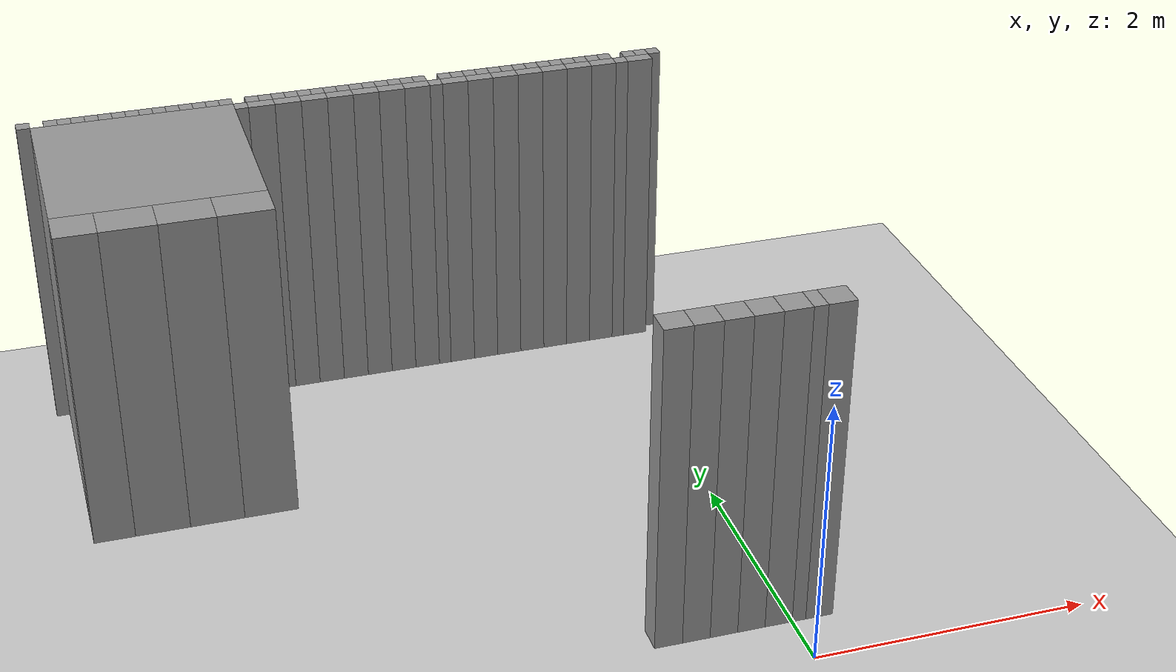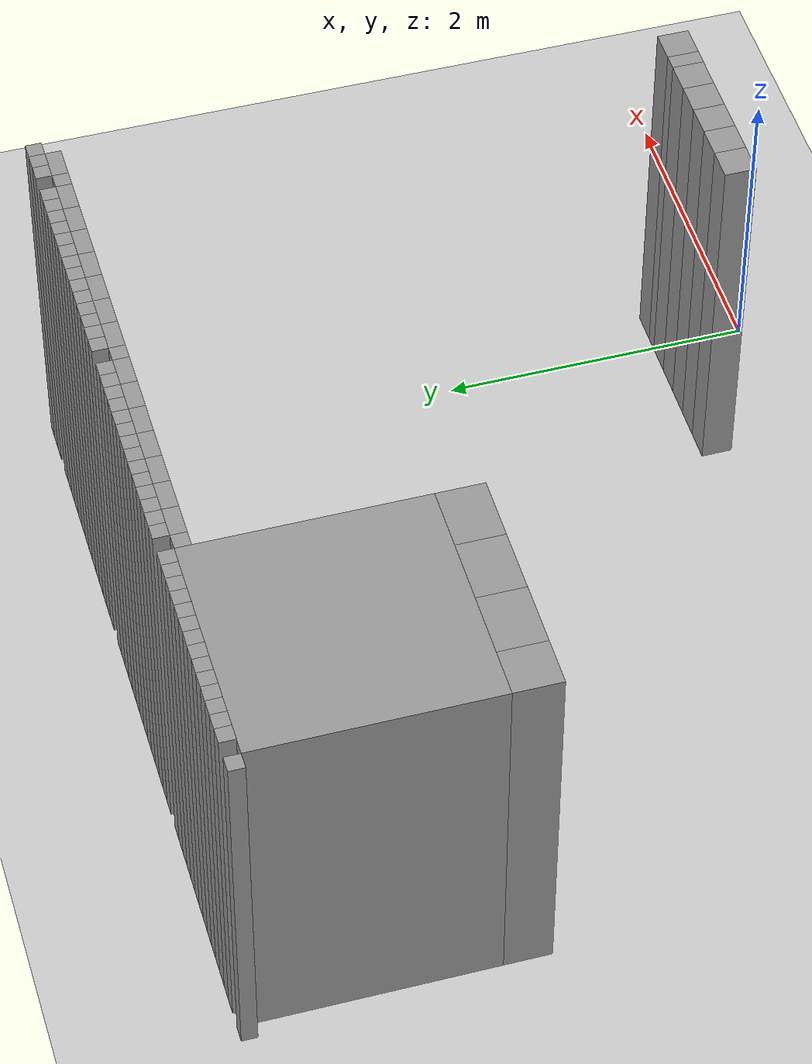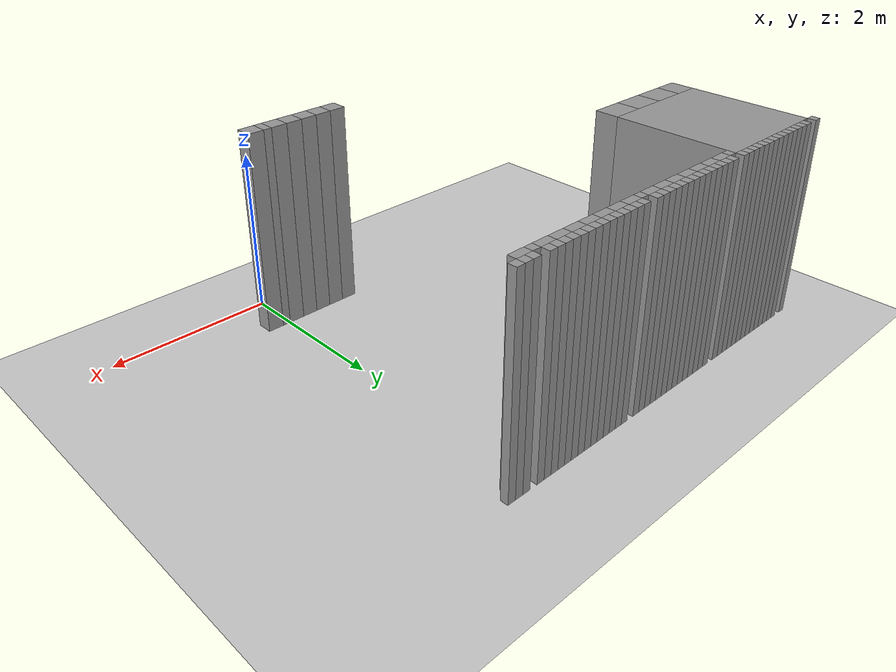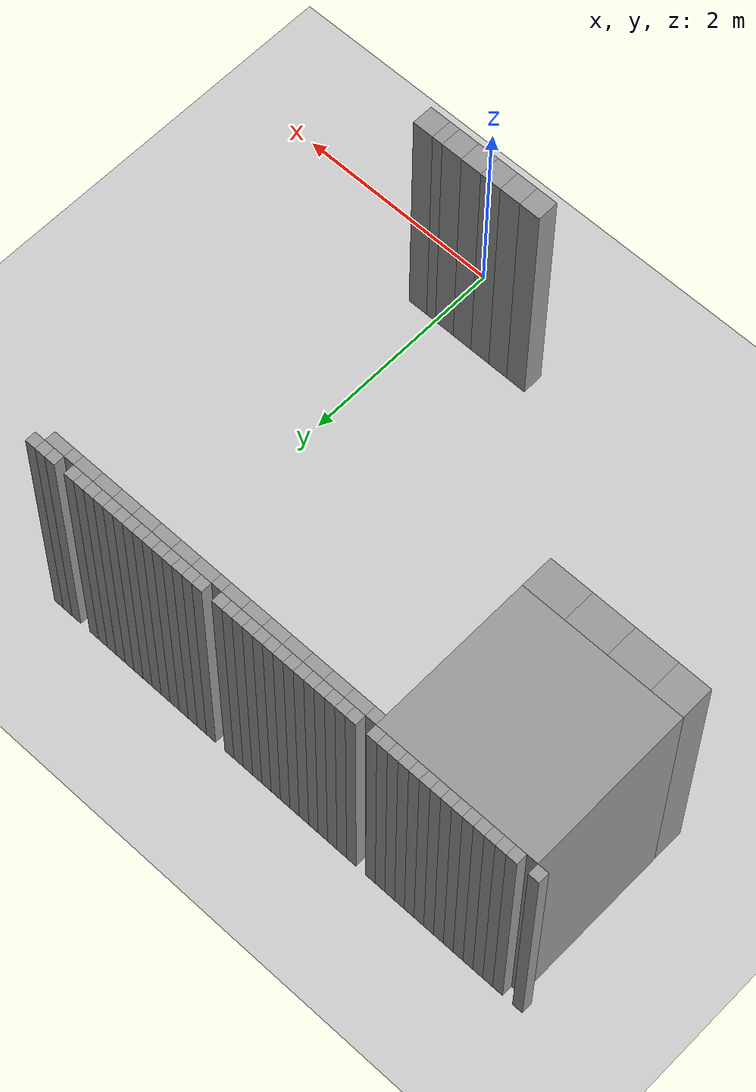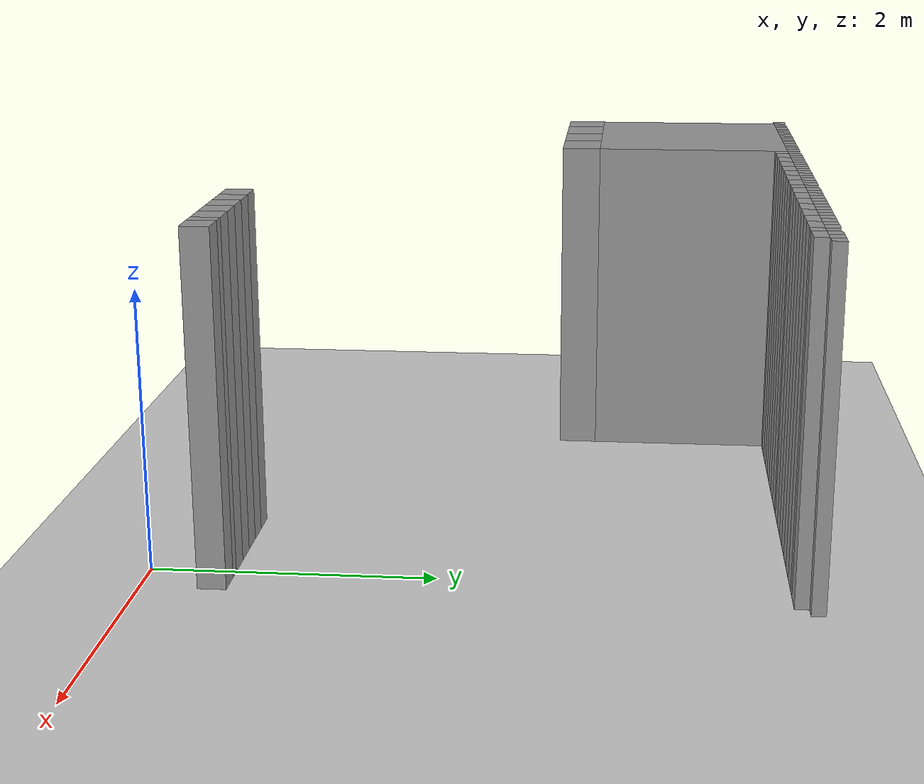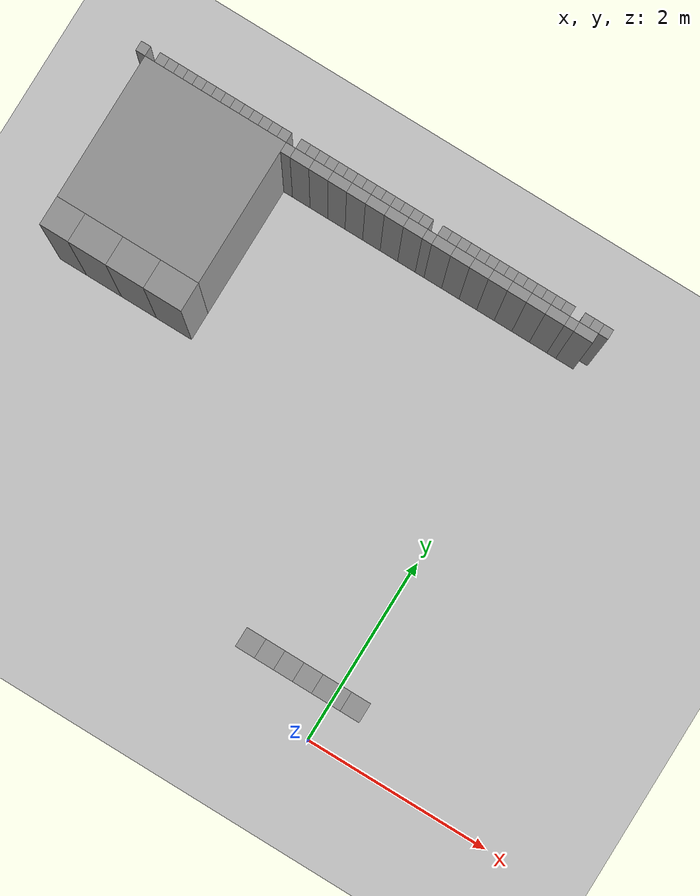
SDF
<sdf version="1.6">
 <world name="default">
  <include><uri>model://sun</uri></include>
  <include><uri>model://ground_plane</uri></include>
  <model name="stage_test">
   <static>1</static>
   <pose>-12 -12 0 0 0 0</pose>
   <link name="Wall_165">
    <pose>7.449999999999999 16.55 0 0 0 0</pose>
    <collision name="Wall_165_collision">
     <pose>0 0 1.25 0 0 0</pose>
     <geometry><box><size>0.09999999999999964 0.10000000000000142 2.5</size></box></geometry>
    </collision>
    <visual name="Wall_165_visual">
     <pose>0 0 1.25 0 0 0</pose>
     <geometry><box><size>0.09999999999999964 0.10000000000000142 2.5</size></box></geometry>
     <material>
      <script><uri>file://media/materials/scripts/gazebo.material</uri><name>Gazebo/Grey</name></script>
      <ambient>1 1 1 1</ambient>
     </material>
    </visual>
   </link>
   <link name="Wall_195">
    <pose>7.65 16.55 0 0 0 0</pose>
    <collision name="Wall_195_collision">
     <pose>0 0 1.25 0 0 0</pose>
     <geometry><box><size>0.09999999999999964 0.10000000000000142 2.5</size></box></geometry>
    </collision>
    <visual name="Wall_195_visual">
     <pose>0 0 1.25 0 0 0</pose>
     <geometry><box><size>0.09999999999999964 0.10000000000000142 2.5</size></box></geometry>
     <material>
      <script><uri>file://media/materials/scripts/gazebo.material</uri><name>Gazebo/Grey</name></script>
      <ambient>1 1 1 1</ambient>
     </material>
    </visual>
   </link>
   <link name="Wall_196">
    <pose>7.75 16.55 0 0 0 0</pose>
    <collision name="Wall_196_collision">
     <pose>0 0 1.25 0 0 0</pose>
     <geometry><box><size>0.10000000000000053 0.10000000000000142 2.5</size></box></geometry>
    </collision>
    <visual name="Wall_196_visual">
     <pose>0 0 1.25 0 0 0</pose>
     <geometry><box><size>0.10000000000000053 0.10000000000000142 2.5</size></box></geometry>
     <material>
      <script><uri>file://media/materials/scripts/gazebo.material</uri><name>Gazebo/Grey</name></script>
      <ambient>1 1 1 1</ambient>
     </material>
    </visual>
   </link>
   <link name="Wall_197">
    <pose>7.8500000000000005 16.55 0 0 0 0</pose>
    <collision name="Wall_197_collision">
     <pose>0 0 1.25 0 0 0</pose>
     <geometry><box><size>0.09999999999999964 0.10000000000000142 2.5</size></box></geometry>
    </collision>
    <visual name="Wall_197_visual">
     <pose>0 0 1.25 0 0 0</pose>
     <geometry><box><size>0.09999999999999964 0.10000000000000142 2.5</size></box></geometry>
     <material>
      <script><uri>file://media/materials/scripts/gazebo.material</uri><name>Gazebo/Grey</name></script>
      <ambient>1 1 1 1</ambient>
     </material>
    </visual>
   </link>
   <link name="Wall_198">
    <pose>7.949999999999999 16.55 0 0 0 0</pose>
    <collision name="Wall_198_collision">
     <pose>0 0 1.25 0 0 0</pose>
     <geometry><box><size>0.09999999999999964 0.10000000000000142 2.5</size></box></geometry>
    </collision>
    <visual name="Wall_198_visual">
     <pose>0 0 1.25 0 0 0</pose>
     <geometry><box><size>0.09999999999999964 0.10000000000000142 2.5</size></box></geometry>
     <material>
      <script><uri>file://media/materials/scripts/gazebo.material</uri><name>Gazebo/Grey</name></script>
      <ambient>1 1 1 1</ambient>
     </material>
    </visual>
   </link>
   <link name="Wall_199">
    <pose>8.05 16.55 0 0 0 0</pose>
    <collision name="Wall_199_collision">
     <pose>0 0 1.25 0 0 0</pose>
     <geometry><box><size>0.09999999999999964 0.10000000000000142 2.5</size></box></geometry>
    </collision>
    <visual name="Wall_199_visual">
     <pose>0 0 1.25 0 0 0</pose>
     <geometry><box><size>0.09999999999999964 0.10000000000000142 2.5</size></box></geometry>
     <material>
      <script><uri>file://media/materials/scripts/gazebo.material</uri><name>Gazebo/Grey</name></script>
      <ambient>1 1 1 1</ambient>
     </material>
    </visual>
   </link>
   <link name="Wall_200">
    <pose>8.15 16.55 0 0 0 0</pose>
    <collision name="Wall_200_collision">
     <pose>0 0 1.25 0 0 0</pose>
     <geometry><box><size>0.10000000000000142 0.10000000000000142 2.5</size></box></geometry>
    </collision>
    <visual name="Wall_200_visual">
     <pose>0 0 1.25 0 0 0</pose>
     <geometry><box><size>0.10000000000000142 0.10000000000000142 2.5</size></box></geometry>
     <material>
      <script><uri>file://media/materials/scripts/gazebo.material</uri><name>Gazebo/Grey</name></script>
      <ambient>1 1 1 1</ambient>
     </material>
    </visual>
   </link>
   <link name="Wall_201">
    <pose>8.25 16.55 0 0 0 0</pose>
    <collision name="Wall_201_collision">
     <pose>0 0 1.25 0 0 0</pose>
     <geometry><box><size>0.09999999999999964 0.10000000000000142 2.5</size></box></geometry>
    </collision>
    <visual name="Wall_201_visual">
     <pose>0 0 1.25 0 0 0</pose>
     <geometry><box><size>0.09999999999999964 0.10000000000000142 2.5</size></box></geometry>
     <material>
      <script><uri>file://media/materials/scripts/gazebo.material</uri><name>Gazebo/Grey</name></script>
      <ambient>1 1 1 1</ambient>
     </material>
    </visual>
   </link>
   <link name="Wall_202">
    <pose>8.350000000000001 16.55 0 0 0 0</pose>
    <collision name="Wall_202_collision">
     <pose>0 0 1.25 0 0 0</pose>
     <geometry><box><size>0.09999999999999964 0.10000000000000142 2.5</size></box></geometry>
    </collision>
    <visual name="Wall_202_visual">
     <pose>0 0 1.25 0 0 0</pose>
     <geometry><box><size>0.09999999999999964 0.10000000000000142 2.5</size></box></geometry>
     <material>
      <script><uri>file://media/materials/scripts/gazebo.material</uri><name>Gazebo/Grey</name></script>
      <ambient>1 1 1 1</ambient>
     </material>
    </visual>
   </link>
   <link name="Wall_203">
    <pose>8.45 16.55 0 0 0 0</pose>
    <collision name="Wall_203_collision">
     <pose>0 0 1.25 0 0 0</pose>
     <geometry><box><size>0.09999999999999964 0.10000000000000142 2.5</size></box></geometry>
    </collision>
    <visual name="Wall_203_visual">
     <pose>0 0 1.25 0 0 0</pose>
     <geometry><box><size>0.09999999999999964 0.10000000000000142 2.5</size></box></geometry>
     <material>
      <script><uri>file://media/materials/scripts/gazebo.material</uri><name>Gazebo/Grey</name></script>
      <ambient>1 1 1 1</ambient>
     </material>
    </visual>
   </link>
   <link name="Wall_204">
    <pose>8.55 16.55 0 0 0 0</pose>
    <collision name="Wall_204_collision">
     <pose>0 0 1.25 0 0 0</pose>
     <geometry><box><size>0.09999999999999964 0.10000000000000142 2.5</size></box></geometry>
    </collision>
    <visual name="Wall_204_visual">
     <pose>0 0 1.25 0 0 0</pose>
     <geometry><box><size>0.09999999999999964 0.10000000000000142 2.5</size></box></geometry>
     <material>
      <script><uri>file://media/materials/scripts/gazebo.material</uri><name>Gazebo/Grey</name></script>
      <ambient>1 1 1 1</ambient>
     </material>
    </visual>
   </link>
   <link name="Wall_205">
    <pose>8.65 16.55 0 0 0 0</pose>
    <collision name="Wall_205_collision">
     <pose>0 0 1.25 0 0 0</pose>
     <geometry><box><size>0.10000000000000142 0.10000000000000142 2.5</size></box></geometry>
    </collision>
    <visual name="Wall_205_visual">
     <pose>0 0 1.25 0 0 0</pose>
     <geometry><box><size>0.10000000000000142 0.10000000000000142 2.5</size></box></geometry>
     <material>
      <script><uri>file://media/materials/scripts/gazebo.material</uri><name>Gazebo/Grey</name></script>
      <ambient>1 1 1 1</ambient>
     </material>
    </visual>
   </link>
   <link name="Wall_206">
    <pose>8.75 16.55 0 0 0 0</pose>
    <collision name="Wall_206_collision">
     <pose>0 0 1.25 0 0 0</pose>
     <geometry><box><size>0.09999999999999964 0.10000000000000142 2.5</size></box></geometry>
    </collision>
    <visual name="Wall_206_visual">
     <pose>0 0 1.25 0 0 0</pose>
     <geometry><box><size>0.09999999999999964 0.10000000000000142 2.5</size></box></geometry>
     <material>
      <script><uri>file://media/materials/scripts/gazebo.material</uri><name>Gazebo/Grey</name></script>
      <ambient>1 1 1 1</ambient>
     </material>
    </visual>
   </link>
   <link name="Wall_207">
    <pose>8.850000000000001 16.55 0 0 0 0</pose>
    <collision name="Wall_207_collision">
     <pose>0 0 1.25 0 0 0</pose>
     <geometry><box><size>0.09999999999999964 0.10000000000000142 2.5</size></box></geometry>
    </collision>
    <visual name="Wall_207_visual">
     <pose>0 0 1.25 0 0 0</pose>
     <geometry><box><size>0.09999999999999964 0.10000000000000142 2.5</size></box></geometry>
     <material>
      <script><uri>file://media/materials/scripts/gazebo.material</uri><name>Gazebo/Grey</name></script>
      <ambient>1 1 1 1</ambient>
     </material>
    </visual>
   </link>
   <link name="Wall_208">
    <pose>8.95 16.55 0 0 0 0</pose>
    <collision name="Wall_208_collision">
     <pose>0 0 1.25 0 0 0</pose>
     <geometry><box><size>0.09999999999999964 0.10000000000000142 2.5</size></box></geometry>
    </collision>
    <visual name="Wall_208_visual">
     <pose>0 0 1.25 0 0 0</pose>
     <geometry><box><size>0.09999999999999964 0.10000000000000142 2.5</size></box></geometry>
     <material>
      <script><uri>file://media/materials/scripts/gazebo.material</uri><name>Gazebo/Grey</name></script>
      <ambient>1 1 1 1</ambient>
     </material>
    </visual>
   </link>
   <link name="Wall_209">
    <pose>8.25 15.75 0 0 0 0</pose>
    <collision name="Wall_209_collision">
     <pose>0 0 1.25 0 0 0</pose>
     <geometry><box><size>1.5 1.5 2.5</size></box></geometry>
    </collision>
    <visual name="Wall_209_visual">
     <pose>0 0 1.25 0 0 0</pose>
     <geometry><box><size>1.5 1.5 2.5</size></box></geometry>
     <material>
      <script><uri>file://media/materials/scripts/gazebo.material</uri><name>Gazebo/Grey</name></script>
      <ambient>1 1 1 1</ambient>
     </material>
    </visual>
   </link>
   <link name="Wall_214">
    <pose>7.65 14.850000000000001 0 0 0 0</pose>
    <collision name="Wall_214_collision">
     <pose>0 0 1.25 0 0 0</pose>
     <geometry><box><size>0.3000000000000007 0.29999999999999893 2.5</size></box></geometry>
    </collision>
    <visual name="Wall_214_visual">
     <pose>0 0 1.25 0 0 0</pose>
     <geometry><box><size>0.3000000000000007 0.29999999999999893 2.5</size></box></geometry>
     <material>
      <script><uri>file://media/materials/scripts/gazebo.material</uri><name>Gazebo/Grey</name></script>
      <ambient>1 1 1 1</ambient>
     </material>
    </visual>
   </link>
   <link name="Wall_215">
    <pose>8.0 14.850000000000001 0 0 0 0</pose>
    <collision name="Wall_215_collision">
     <pose>0 0 1.25 0 0 0</pose>
     <geometry><box><size>0.40000000000000036 0.29999999999999893 2.5</size></box></geometry>
    </collision>
    <visual name="Wall_215_visual">
     <pose>0 0 1.25 0 0 0</pose>
     <geometry><box><size>0.40000000000000036 0.29999999999999893 2.5</size></box></geometry>
     <material>
      <script><uri>file://media/materials/scripts/gazebo.material</uri><name>Gazebo/Grey</name></script>
      <ambient>1 1 1 1</ambient>
     </material>
    </visual>
   </link>
   <link name="Wall_216">
    <pose>8.4 14.850000000000001 0 0 0 0</pose>
    <collision name="Wall_216_collision">
     <pose>0 0 1.25 0 0 0</pose>
     <geometry><box><size>0.3999999999999986 0.29999999999999893 2.5</size></box></geometry>
    </collision>
    <visual name="Wall_216_visual">
     <pose>0 0 1.25 0 0 0</pose>
     <geometry><box><size>0.3999999999999986 0.29999999999999893 2.5</size></box></geometry>
     <material>
      <script><uri>file://media/materials/scripts/gazebo.material</uri><name>Gazebo/Grey</name></script>
      <ambient>1 1 1 1</ambient>
     </material>
    </visual>
   </link>
   <link name="Wall_217">
    <pose>8.8 14.850000000000001 0 0 0 0</pose>
    <collision name="Wall_217_collision">
     <pose>0 0 1.25 0 0 0</pose>
     <geometry><box><size>0.40000000000000036 0.29999999999999893 2.5</size></box></geometry>
    </collision>
    <visual name="Wall_217_visual">
     <pose>0 0 1.25 0 0 0</pose>
     <geometry><box><size>0.40000000000000036 0.29999999999999893 2.5</size></box></geometry>
     <material>
      <script><uri>file://media/materials/scripts/gazebo.material</uri><name>Gazebo/Grey</name></script>
      <ambient>1 1 1 1</ambient>
     </material>
    </visual>
   </link>
   <link name="Wall_218">
    <pose>9.15 16.55 0 0 0 0</pose>
    <collision name="Wall_218_collision">
     <pose>0 0 1.25 0 0 0</pose>
     <geometry><box><size>0.10000000000000142 0.10000000000000142 2.5</size></box></geometry>
    </collision>
    <visual name="Wall_218_visual">
     <pose>0 0 1.25 0 0 0</pose>
     <geometry><box><size>0.10000000000000142 0.10000000000000142 2.5</size></box></geometry>
     <material>
      <script><uri>file://media/materials/scripts/gazebo.material</uri><name>Gazebo/Grey</name></script>
      <ambient>1 1 1 1</ambient>
     </material>
    </visual>
   </link>
   <link name="Wall_219">
    <pose>9.25 16.55 0 0 0 0</pose>
    <collision name="Wall_219_collision">
     <pose>0 0 1.25 0 0 0</pose>
     <geometry><box><size>0.09999999999999964 0.10000000000000142 2.5</size></box></geometry>
    </collision>
    <visual name="Wall_219_visual">
     <pose>0 0 1.25 0 0 0</pose>
     <geometry><box><size>0.09999999999999964 0.10000000000000142 2.5</size></box></geometry>
     <material>
      <script><uri>file://media/materials/scripts/gazebo.material</uri><name>Gazebo/Grey</name></script>
      <ambient>1 1 1 1</ambient>
     </material>
    </visual>
   </link>
   <link name="Wall_220">
    <pose>9.350000000000001 16.55 0 0 0 0</pose>
    <collision name="Wall_220_collision">
     <pose>0 0 1.25 0 0 0</pose>
     <geometry><box><size>0.09999999999999964 0.10000000000000142 2.5</size></box></geometry>
    </collision>
    <visual name="Wall_220_visual">
     <pose>0 0 1.25 0 0 0</pose>
     <geometry><box><size>0.09999999999999964 0.10000000000000142 2.5</size></box></geometry>
     <material>
      <script><uri>file://media/materials/scripts/gazebo.material</uri><name>Gazebo/Grey</name></script>
      <ambient>1 1 1 1</ambient>
     </material>
    </visual>
   </link>
   <link name="Wall_221">
    <pose>9.45 16.55 0 0 0 0</pose>
    <collision name="Wall_221_collision">
     <pose>0 0 1.25 0 0 0</pose>
     <geometry><box><size>0.09999999999999964 0.10000000000000142 2.5</size></box></geometry>
    </collision>
    <visual name="Wall_221_visual">
     <pose>0 0 1.25 0 0 0</pose>
     <geometry><box><size>0.09999999999999964 0.10000000000000142 2.5</size></box></geometry>
     <material>
      <script><uri>file://media/materials/scripts/gazebo.material</uri><name>Gazebo/Grey</name></script>
      <ambient>1 1 1 1</ambient>
     </material>
    </visual>
   </link>
   <link name="Wall_222">
    <pose>9.55 16.55 0 0 0 0</pose>
    <collision name="Wall_222_collision">
     <pose>0 0 1.25 0 0 0</pose>
     <geometry><box><size>0.10000000000000142 0.10000000000000142 2.5</size></box></geometry>
    </collision>
    <visual name="Wall_222_visual">
     <pose>0 0 1.25 0 0 0</pose>
     <geometry><box><size>0.10000000000000142 0.10000000000000142 2.5</size></box></geometry>
     <material>
      <script><uri>file://media/materials/scripts/gazebo.material</uri><name>Gazebo/Grey</name></script>
      <ambient>1 1 1 1</ambient>
     </material>
    </visual>
   </link>
   <link name="Wall_223">
    <pose>9.650000000000002 16.55 0 0 0 0</pose>
    <collision name="Wall_223_collision">
     <pose>0 0 1.25 0 0 0</pose>
     <geometry><box><size>0.09999999999999964 0.10000000000000142 2.5</size></box></geometry>
    </collision>
    <visual name="Wall_223_visual">
     <pose>0 0 1.25 0 0 0</pose>
     <geometry><box><size>0.09999999999999964 0.10000000000000142 2.5</size></box></geometry>
     <material>
      <script><uri>file://media/materials/scripts/gazebo.material</uri><name>Gazebo/Grey</name></script>
      <ambient>1 1 1 1</ambient>
     </material>
    </visual>
   </link>
   <link name="Wall_224">
    <pose>9.75 16.55 0 0 0 0</pose>
    <collision name="Wall_224_collision">
     <pose>0 0 1.25 0 0 0</pose>
     <geometry><box><size>0.09999999999999964 0.10000000000000142 2.5</size></box></geometry>
    </collision>
    <visual name="Wall_224_visual">
     <pose>0 0 1.25 0 0 0</pose>
     <geometry><box><size>0.09999999999999964 0.10000000000000142 2.5</size></box></geometry>
     <material>
      <script><uri>file://media/materials/scripts/gazebo.material</uri><name>Gazebo/Grey</name></script>
      <ambient>1 1 1 1</ambient>
     </material>
    </visual>
   </link>
   <link name="Wall_225">
    <pose>9.850000000000001 16.55 0 0 0 0</pose>
    <collision name="Wall_225_collision">
     <pose>0 0 1.25 0 0 0</pose>
     <geometry><box><size>0.09999999999999964 0.10000000000000142 2.5</size></box></geometry>
    </collision>
    <visual name="Wall_225_visual">
     <pose>0 0 1.25 0 0 0</pose>
     <geometry><box><size>0.09999999999999964 0.10000000000000142 2.5</size></box></geometry>
     <material>
      <script><uri>file://media/materials/scripts/gazebo.material</uri><name>Gazebo/Grey</name></script>
      <ambient>1 1 1 1</ambient>
     </material>
    </visual>
   </link>
   <link name="Wall_226">
    <pose>9.95 16.55 0 0 0 0</pose>
    <collision name="Wall_226_collision">
     <pose>0 0 1.25 0 0 0</pose>
     <geometry><box><size>0.09999999999999964 0.10000000000000142 2.5</size></box></geometry>
    </collision>
    <visual name="Wall_226_visual">
     <pose>0 0 1.25 0 0 0</pose>
     <geometry><box><size>0.09999999999999964 0.10000000000000142 2.5</size></box></geometry>
     <material>
      <script><uri>file://media/materials/scripts/gazebo.material</uri><name>Gazebo/Grey</name></script>
      <ambient>1 1 1 1</ambient>
     </material>
    </visual>
   </link>
   <link name="Wall_227">
    <pose>10.05 16.55 0 0 0 0</pose>
    <collision name="Wall_227_collision">
     <pose>0 0 1.25 0 0 0</pose>
     <geometry><box><size>0.10000000000000142 0.10000000000000142 2.5</size></box></geometry>
    </collision>
    <visual name="Wall_227_visual">
     <pose>0 0 1.25 0 0 0</pose>
     <geometry><box><size>0.10000000000000142 0.10000000000000142 2.5</size></box></geometry>
     <material>
      <script><uri>file://media/materials/scripts/gazebo.material</uri><name>Gazebo/Grey</name></script>
      <ambient>1 1 1 1</ambient>
     </material>
    </visual>
   </link>
   <link name="Wall_228">
    <pose>10.150000000000002 16.55 0 0 0 0</pose>
    <collision name="Wall_228_collision">
     <pose>0 0 1.25 0 0 0</pose>
     <geometry><box><size>0.09999999999999964 0.10000000000000142 2.5</size></box></geometry>
    </collision>
    <visual name="Wall_228_visual">
     <pose>0 0 1.25 0 0 0</pose>
     <geometry><box><size>0.09999999999999964 0.10000000000000142 2.5</size></box></geometry>
     <material>
      <script><uri>file://media/materials/scripts/gazebo.material</uri><name>Gazebo/Grey</name></script>
      <ambient>1 1 1 1</ambient>
     </material>
    </visual>
   </link>
   <link name="Wall_229">
    <pose>10.25 16.55 0 0 0 0</pose>
    <collision name="Wall_229_collision">
     <pose>0 0 1.25 0 0 0</pose>
     <geometry><box><size>0.09999999999999964 0.10000000000000142 2.5</size></box></geometry>
    </collision>
    <visual name="Wall_229_visual">
     <pose>0 0 1.25 0 0 0</pose>
     <geometry><box><size>0.09999999999999964 0.10000000000000142 2.5</size></box></geometry>
     <material>
      <script><uri>file://media/materials/scripts/gazebo.material</uri><name>Gazebo/Grey</name></script>
      <ambient>1 1 1 1</ambient>
     </material>
    </visual>
   </link>
   <link name="Wall_230">
    <pose>10.350000000000001 16.55 0 0 0 0</pose>
    <collision name="Wall_230_collision">
     <pose>0 0 1.25 0 0 0</pose>
     <geometry><box><size>0.09999999999999964 0.10000000000000142 2.5</size></box></geometry>
    </collision>
    <visual name="Wall_230_visual">
     <pose>0 0 1.25 0 0 0</pose>
     <geometry><box><size>0.09999999999999964 0.10000000000000142 2.5</size></box></geometry>
     <material>
      <script><uri>file://media/materials/scripts/gazebo.material</uri><name>Gazebo/Grey</name></script>
      <ambient>1 1 1 1</ambient>
     </material>
    </visual>
   </link>
   <link name="Wall_231">
    <pose>10.45 16.55 0 0 0 0</pose>
    <collision name="Wall_231_collision">
     <pose>0 0 1.25 0 0 0</pose>
     <geometry><box><size>0.09999999999999964 0.10000000000000142 2.5</size></box></geometry>
    </collision>
    <visual name="Wall_231_visual">
     <pose>0 0 1.25 0 0 0</pose>
     <geometry><box><size>0.09999999999999964 0.10000000000000142 2.5</size></box></geometry>
     <material>
      <script><uri>file://media/materials/scripts/gazebo.material</uri><name>Gazebo/Grey</name></script>
      <ambient>1 1 1 1</ambient>
     </material>
    </visual>
   </link>
   <link name="Wall_232">
    <pose>9.05 16.450000000000003 0 0 0 0</pose>
    <collision name="Wall_232_collision">
     <pose>0 0 1.25 0 0 0</pose>
     <geometry><box><size>0.09999999999999964 0.09999999999999787 2.5</size></box></geometry>
    </collision>
    <visual name="Wall_232_visual">
     <pose>0 0 1.25 0 0 0</pose>
     <geometry><box><size>0.09999999999999964 0.09999999999999787 2.5</size></box></geometry>
     <material>
      <script><uri>file://media/materials/scripts/gazebo.material</uri><name>Gazebo/Grey</name></script>
      <ambient>1 1 1 1</ambient>
     </material>
    </visual>
   </link>
   <link name="Wall_233">
    <pose>9.2 16.450000000000003 0 0 0 0</pose>
    <collision name="Wall_233_collision">
     <pose>0 0 1.25 0 0 0</pose>
     <geometry><box><size>0.20000000000000107 0.09999999999999787 2.5</size></box></geometry>
    </collision>
    <visual name="Wall_233_visual">
     <pose>0 0 1.25 0 0 0</pose>
     <geometry><box><size>0.20000000000000107 0.09999999999999787 2.5</size></box></geometry>
     <material>
      <script><uri>file://media/materials/scripts/gazebo.material</uri><name>Gazebo/Grey</name></script>
      <ambient>1 1 1 1</ambient>
     </material>
    </visual>
   </link>
   <link name="Wall_234">
    <pose>9.4 16.450000000000003 0 0 0 0</pose>
    <collision name="Wall_234_collision">
     <pose>0 0 1.25 0 0 0</pose>
     <geometry><box><size>0.1999999999999993 0.09999999999999787 2.5</size></box></geometry>
    </collision>
    <visual name="Wall_234_visual">
     <pose>0 0 1.25 0 0 0</pose>
     <geometry><box><size>0.1999999999999993 0.09999999999999787 2.5</size></box></geometry>
     <material>
      <script><uri>file://media/materials/scripts/gazebo.material</uri><name>Gazebo/Grey</name></script>
      <ambient>1 1 1 1</ambient>
     </material>
    </visual>
   </link>
   <link name="Wall_235">
    <pose>9.600000000000001 16.450000000000003 0 0 0 0</pose>
    <collision name="Wall_235_collision">
     <pose>0 0 1.25 0 0 0</pose>
     <geometry><box><size>0.20000000000000107 0.09999999999999787 2.5</size></box></geometry>
    </collision>
    <visual name="Wall_235_visual">
     <pose>0 0 1.25 0 0 0</pose>
     <geometry><box><size>0.20000000000000107 0.09999999999999787 2.5</size></box></geometry>
     <material>
      <script><uri>file://media/materials/scripts/gazebo.material</uri><name>Gazebo/Grey</name></script>
      <ambient>1 1 1 1</ambient>
     </material>
    </visual>
   </link>
   <link name="Wall_236">
    <pose>9.8 16.450000000000003 0 0 0 0</pose>
    <collision name="Wall_236_collision">
     <pose>0 0 1.25 0 0 0</pose>
     <geometry><box><size>0.1999999999999993 0.09999999999999787 2.5</size></box></geometry>
    </collision>
    <visual name="Wall_236_visual">
     <pose>0 0 1.25 0 0 0</pose>
     <geometry><box><size>0.1999999999999993 0.09999999999999787 2.5</size></box></geometry>
     <material>
      <script><uri>file://media/materials/scripts/gazebo.material</uri><name>Gazebo/Grey</name></script>
      <ambient>1 1 1 1</ambient>
     </material>
    </visual>
   </link>
   <link name="Wall_237">
    <pose>10.0 16.450000000000003 0 0 0 0</pose>
    <collision name="Wall_237_collision">
     <pose>0 0 1.25 0 0 0</pose>
     <geometry><box><size>0.20000000000000107 0.09999999999999787 2.5</size></box></geometry>
    </collision>
    <visual name="Wall_237_visual">
     <pose>0 0 1.25 0 0 0</pose>
     <geometry><box><size>0.20000000000000107 0.09999999999999787 2.5</size></box></geometry>
     <material>
      <script><uri>file://media/materials/scripts/gazebo.material</uri><name>Gazebo/Grey</name></script>
      <ambient>1 1 1 1</ambient>
     </material>
    </visual>
   </link>
   <link name="Wall_238">
    <pose>10.200000000000001 16.450000000000003 0 0 0 0</pose>
    <collision name="Wall_238_collision">
     <pose>0 0 1.25 0 0 0</pose>
     <geometry><box><size>0.1999999999999993 0.09999999999999787 2.5</size></box></geometry>
    </collision>
    <visual name="Wall_238_visual">
     <pose>0 0 1.25 0 0 0</pose>
     <geometry><box><size>0.1999999999999993 0.09999999999999787 2.5</size></box></geometry>
     <material>
      <script><uri>file://media/materials/scripts/gazebo.material</uri><name>Gazebo/Grey</name></script>
      <ambient>1 1 1 1</ambient>
     </material>
    </visual>
   </link>
   <link name="Wall_239">
    <pose>10.4 16.450000000000003 0 0 0 0</pose>
    <collision name="Wall_239_collision">
     <pose>0 0 1.25 0 0 0</pose>
     <geometry><box><size>0.1999999999999993 0.09999999999999787 2.5</size></box></geometry>
    </collision>
    <visual name="Wall_239_visual">
     <pose>0 0 1.25 0 0 0</pose>
     <geometry><box><size>0.1999999999999993 0.09999999999999787 2.5</size></box></geometry>
     <material>
      <script><uri>file://media/materials/scripts/gazebo.material</uri><name>Gazebo/Grey</name></script>
      <ambient>1 1 1 1</ambient>
     </material>
    </visual>
   </link>
   <link name="Wall_240">
    <pose>10.650000000000002 16.55 0 0 0 0</pose>
    <collision name="Wall_240_collision">
     <pose>0 0 1.25 0 0 0</pose>
     <geometry><box><size>0.09999999999999964 0.10000000000000142 2.5</size></box></geometry>
    </collision>
    <visual name="Wall_240_visual">
     <pose>0 0 1.25 0 0 0</pose>
     <geometry><box><size>0.09999999999999964 0.10000000000000142 2.5</size></box></geometry>
     <material>
      <script><uri>file://media/materials/scripts/gazebo.material</uri><name>Gazebo/Grey</name></script>
      <ambient>1 1 1 1</ambient>
     </material>
    </visual>
   </link>
   <link name="Wall_241">
    <pose>10.75 16.55 0 0 0 0</pose>
    <collision name="Wall_241_collision">
     <pose>0 0 1.25 0 0 0</pose>
     <geometry><box><size>0.09999999999999964 0.10000000000000142 2.5</size></box></geometry>
    </collision>
    <visual name="Wall_241_visual">
     <pose>0 0 1.25 0 0 0</pose>
     <geometry><box><size>0.09999999999999964 0.10000000000000142 2.5</size></box></geometry>
     <material>
      <script><uri>file://media/materials/scripts/gazebo.material</uri><name>Gazebo/Grey</name></script>
      <ambient>1 1 1 1</ambient>
     </material>
    </visual>
   </link>
   <link name="Wall_242">
    <pose>10.850000000000001 16.55 0 0 0 0</pose>
    <collision name="Wall_242_collision">
     <pose>0 0 1.25 0 0 0</pose>
     <geometry><box><size>0.09999999999999964 0.10000000000000142 2.5</size></box></geometry>
    </collision>
    <visual name="Wall_242_visual">
     <pose>0 0 1.25 0 0 0</pose>
     <geometry><box><size>0.09999999999999964 0.10000000000000142 2.5</size></box></geometry>
     <material>
      <script><uri>file://media/materials/scripts/gazebo.material</uri><name>Gazebo/Grey</name></script>
      <ambient>1 1 1 1</ambient>
     </material>
    </visual>
   </link>
   <link name="Wall_243">
    <pose>10.95 16.55 0 0 0 0</pose>
    <collision name="Wall_243_collision">
     <pose>0 0 1.25 0 0 0</pose>
     <geometry><box><size>0.09999999999999964 0.10000000000000142 2.5</size></box></geometry>
    </collision>
    <visual name="Wall_243_visual">
     <pose>0 0 1.25 0 0 0</pose>
     <geometry><box><size>0.09999999999999964 0.10000000000000142 2.5</size></box></geometry>
     <material>
      <script><uri>file://media/materials/scripts/gazebo.material</uri><name>Gazebo/Grey</name></script>
      <ambient>1 1 1 1</ambient>
     </material>
    </visual>
   </link>
   <link name="Wall_244">
    <pose>11.05 16.55 0 0 0 0</pose>
    <collision name="Wall_244_collision">
     <pose>0 0 1.25 0 0 0</pose>
     <geometry><box><size>0.10000000000000142 0.10000000000000142 2.5</size></box></geometry>
    </collision>
    <visual name="Wall_244_visual">
     <pose>0 0 1.25 0 0 0</pose>
     <geometry><box><size>0.10000000000000142 0.10000000000000142 2.5</size></box></geometry>
     <material>
      <script><uri>file://media/materials/scripts/gazebo.material</uri><name>Gazebo/Grey</name></script>
      <ambient>1 1 1 1</ambient>
     </material>
    </visual>
   </link>
   <link name="Wall_245">
    <pose>11.150000000000002 16.55 0 0 0 0</pose>
    <collision name="Wall_245_collision">
     <pose>0 0 1.25 0 0 0</pose>
     <geometry><box><size>0.09999999999999964 0.10000000000000142 2.5</size></box></geometry>
    </collision>
    <visual name="Wall_245_visual">
     <pose>0 0 1.25 0 0 0</pose>
     <geometry><box><size>0.09999999999999964 0.10000000000000142 2.5</size></box></geometry>
     <material>
      <script><uri>file://media/materials/scripts/gazebo.material</uri><name>Gazebo/Grey</name></script>
      <ambient>1 1 1 1</ambient>
     </material>
    </visual>
   </link>
   <link name="Wall_246">
    <pose>11.25 16.55 0 0 0 0</pose>
    <collision name="Wall_246_collision">
     <pose>0 0 1.25 0 0 0</pose>
     <geometry><box><size>0.09999999999999964 0.10000000000000142 2.5</size></box></geometry>
    </collision>
    <visual name="Wall_246_visual">
     <pose>0 0 1.25 0 0 0</pose>
     <geometry><box><size>0.09999999999999964 0.10000000000000142 2.5</size></box></geometry>
     <material>
      <script><uri>file://media/materials/scripts/gazebo.material</uri><name>Gazebo/Grey</name></script>
      <ambient>1 1 1 1</ambient>
     </material>
    </visual>
   </link>
   <link name="Wall_247">
    <pose>11.350000000000001 16.55 0 0 0 0</pose>
    <collision name="Wall_247_collision">
     <pose>0 0 1.25 0 0 0</pose>
     <geometry><box><size>0.09999999999999964 0.10000000000000142 2.5</size></box></geometry>
    </collision>
    <visual name="Wall_247_visual">
     <pose>0 0 1.25 0 0 0</pose>
     <geometry><box><size>0.09999999999999964 0.10000000000000142 2.5</size></box></geometry>
     <material>
      <script><uri>file://media/materials/scripts/gazebo.material</uri><name>Gazebo/Grey</name></script>
      <ambient>1 1 1 1</ambient>
     </material>
    </visual>
   </link>
   <link name="Wall_248">
    <pose>11.45 16.55 0 0 0 0</pose>
    <collision name="Wall_248_collision">
     <pose>0 0 1.25 0 0 0</pose>
     <geometry><box><size>0.09999999999999964 0.10000000000000142 2.5</size></box></geometry>
    </collision>
    <visual name="Wall_248_visual">
     <pose>0 0 1.25 0 0 0</pose>
     <geometry><box><size>0.09999999999999964 0.10000000000000142 2.5</size></box></geometry>
     <material>
      <script><uri>file://media/materials/scripts/gazebo.material</uri><name>Gazebo/Grey</name></script>
      <ambient>1 1 1 1</ambient>
     </material>
    </visual>
   </link>
   <link name="Wall_249">
    <pose>11.55 16.55 0 0 0 0</pose>
    <collision name="Wall_249_collision">
     <pose>0 0 1.25 0 0 0</pose>
     <geometry><box><size>0.10000000000000142 0.10000000000000142 2.5</size></box></geometry>
    </collision>
    <visual name="Wall_249_visual">
     <pose>0 0 1.25 0 0 0</pose>
     <geometry><box><size>0.10000000000000142 0.10000000000000142 2.5</size></box></geometry>
     <material>
      <script><uri>file://media/materials/scripts/gazebo.material</uri><name>Gazebo/Grey</name></script>
      <ambient>1 1 1 1</ambient>
     </material>
    </visual>
   </link>
   <link name="Wall_250">
    <pose>11.650000000000002 16.55 0 0 0 0</pose>
    <collision name="Wall_250_collision">
     <pose>0 0 1.25 0 0 0</pose>
     <geometry><box><size>0.09999999999999964 0.10000000000000142 2.5</size></box></geometry>
    </collision>
    <visual name="Wall_250_visual">
     <pose>0 0 1.25 0 0 0</pose>
     <geometry><box><size>0.09999999999999964 0.10000000000000142 2.5</size></box></geometry>
     <material>
      <script><uri>file://media/materials/scripts/gazebo.material</uri><name>Gazebo/Grey</name></script>
      <ambient>1 1 1 1</ambient>
     </material>
    </visual>
   </link>
   <link name="Wall_251">
    <pose>11.75 16.55 0 0 0 0</pose>
    <collision name="Wall_251_collision">
     <pose>0 0 1.25 0 0 0</pose>
     <geometry><box><size>0.09999999999999964 0.10000000000000142 2.5</size></box></geometry>
    </collision>
    <visual name="Wall_251_visual">
     <pose>0 0 1.25 0 0 0</pose>
     <geometry><box><size>0.09999999999999964 0.10000000000000142 2.5</size></box></geometry>
     <material>
      <script><uri>file://media/materials/scripts/gazebo.material</uri><name>Gazebo/Grey</name></script>
      <ambient>1 1 1 1</ambient>
     </material>
    </visual>
   </link>
   <link name="Wall_252">
    <pose>11.850000000000001 16.55 0 0 0 0</pose>
    <collision name="Wall_252_collision">
     <pose>0 0 1.25 0 0 0</pose>
     <geometry><box><size>0.09999999999999964 0.10000000000000142 2.5</size></box></geometry>
    </collision>
    <visual name="Wall_252_visual">
     <pose>0 0 1.25 0 0 0</pose>
     <geometry><box><size>0.09999999999999964 0.10000000000000142 2.5</size></box></geometry>
     <material>
      <script><uri>file://media/materials/scripts/gazebo.material</uri><name>Gazebo/Grey</name></script>
      <ambient>1 1 1 1</ambient>
     </material>
    </visual>
   </link>
   <link name="Wall_253">
    <pose>11.95 16.55 0 0 0 0</pose>
    <collision name="Wall_253_collision">
     <pose>0 0 1.25 0 0 0</pose>
     <geometry><box><size>0.09999999999999964 0.10000000000000142 2.5</size></box></geometry>
    </collision>
    <visual name="Wall_253_visual">
     <pose>0 0 1.25 0 0 0</pose>
     <geometry><box><size>0.09999999999999964 0.10000000000000142 2.5</size></box></geometry>
     <material>
      <script><uri>file://media/materials/scripts/gazebo.material</uri><name>Gazebo/Grey</name></script>
      <ambient>1 1 1 1</ambient>
     </material>
    </visual>
   </link>
   <link name="Wall_254">
    <pose>10.55 16.450000000000003 0 0 0 0</pose>
    <collision name="Wall_254_collision">
     <pose>0 0 1.25 0 0 0</pose>
     <geometry><box><size>0.10000000000000142 0.09999999999999787 2.5</size></box></geometry>
    </collision>
    <visual name="Wall_254_visual">
     <pose>0 0 1.25 0 0 0</pose>
     <geometry><box><size>0.10000000000000142 0.09999999999999787 2.5</size></box></geometry>
     <material>
      <script><uri>file://media/materials/scripts/gazebo.material</uri><name>Gazebo/Grey</name></script>
      <ambient>1 1 1 1</ambient>
     </material>
    </visual>
   </link>
   <link name="Wall_255">
    <pose>10.700000000000001 16.450000000000003 0 0 0 0</pose>
    <collision name="Wall_255_collision">
     <pose>0 0 1.25 0 0 0</pose>
     <geometry><box><size>0.1999999999999993 0.09999999999999787 2.5</size></box></geometry>
    </collision>
    <visual name="Wall_255_visual">
     <pose>0 0 1.25 0 0 0</pose>
     <geometry><box><size>0.1999999999999993 0.09999999999999787 2.5</size></box></geometry>
     <material>
      <script><uri>file://media/materials/scripts/gazebo.material</uri><name>Gazebo/Grey</name></script>
      <ambient>1 1 1 1</ambient>
     </material>
    </visual>
   </link>
   <link name="Wall_256">
    <pose>10.899999999999999 16.450000000000003 0 0 0 0</pose>
    <collision name="Wall_256_collision">
     <pose>0 0 1.25 0 0 0</pose>
     <geometry><box><size>0.1999999999999993 0.09999999999999787 2.5</size></box></geometry>
    </collision>
    <visual name="Wall_256_visual">
     <pose>0 0 1.25 0 0 0</pose>
     <geometry><box><size>0.1999999999999993 0.09999999999999787 2.5</size></box></geometry>
     <material>
      <script><uri>file://media/materials/scripts/gazebo.material</uri><name>Gazebo/Grey</name></script>
      <ambient>1 1 1 1</ambient>
     </material>
    </visual>
   </link>
   <link name="Wall_257">
    <pose>11.100000000000001 16.450000000000003 0 0 0 0</pose>
    <collision name="Wall_257_collision">
     <pose>0 0 1.25 0 0 0</pose>
     <geometry><box><size>0.20000000000000107 0.09999999999999787 2.5</size></box></geometry>
    </collision>
    <visual name="Wall_257_visual">
     <pose>0 0 1.25 0 0 0</pose>
     <geometry><box><size>0.20000000000000107 0.09999999999999787 2.5</size></box></geometry>
     <material>
      <script><uri>file://media/materials/scripts/gazebo.material</uri><name>Gazebo/Grey</name></script>
      <ambient>1 1 1 1</ambient>
     </material>
    </visual>
   </link>
   <link name="Wall_258">
    <pose>11.3 16.450000000000003 0 0 0 0</pose>
    <collision name="Wall_258_collision">
     <pose>0 0 1.25 0 0 0</pose>
     <geometry><box><size>0.1999999999999993 0.09999999999999787 2.5</size></box></geometry>
    </collision>
    <visual name="Wall_258_visual">
     <pose>0 0 1.25 0 0 0</pose>
     <geometry><box><size>0.1999999999999993 0.09999999999999787 2.5</size></box></geometry>
     <material>
      <script><uri>file://media/materials/scripts/gazebo.material</uri><name>Gazebo/Grey</name></script>
      <ambient>1 1 1 1</ambient>
     </material>
    </visual>
   </link>
   <link name="Wall_259">
    <pose>11.5 16.450000000000003 0 0 0 0</pose>
    <collision name="Wall_259_collision">
     <pose>0 0 1.25 0 0 0</pose>
     <geometry><box><size>0.20000000000000107 0.09999999999999787 2.5</size></box></geometry>
    </collision>
    <visual name="Wall_259_visual">
     <pose>0 0 1.25 0 0 0</pose>
     <geometry><box><size>0.20000000000000107 0.09999999999999787 2.5</size></box></geometry>
     <material>
      <script><uri>file://media/materials/scripts/gazebo.material</uri><name>Gazebo/Grey</name></script>
      <ambient>1 1 1 1</ambient>
     </material>
    </visual>
   </link>
   <link name="Wall_260">
    <pose>11.700000000000001 16.450000000000003 0 0 0 0</pose>
    <collision name="Wall_260_collision">
     <pose>0 0 1.25 0 0 0</pose>
     <geometry><box><size>0.1999999999999993 0.09999999999999787 2.5</size></box></geometry>
    </collision>
    <visual name="Wall_260_visual">
     <pose>0 0 1.25 0 0 0</pose>
     <geometry><box><size>0.1999999999999993 0.09999999999999787 2.5</size></box></geometry>
     <material>
      <script><uri>file://media/materials/scripts/gazebo.material</uri><name>Gazebo/Grey</name></script>
      <ambient>1 1 1 1</ambient>
     </material>
    </visual>
   </link>
   <link name="Wall_261">
    <pose>11.899999999999999 16.450000000000003 0 0 0 0</pose>
    <collision name="Wall_261_collision">
     <pose>0 0 1.25 0 0 0</pose>
     <geometry><box><size>0.1999999999999993 0.09999999999999787 2.5</size></box></geometry>
    </collision>
    <visual name="Wall_261_visual">
     <pose>0 0 1.25 0 0 0</pose>
     <geometry><box><size>0.1999999999999993 0.09999999999999787 2.5</size></box></geometry>
     <material>
      <script><uri>file://media/materials/scripts/gazebo.material</uri><name>Gazebo/Grey</name></script>
      <ambient>1 1 1 1</ambient>
     </material>
    </visual>
   </link>
   <link name="Wall_272">
    <pose>11.100000000000001 12.500000000000002 0 0 0 0</pose>
    <collision name="Wall_272_collision">
     <pose>0 0 1.25 0 0 0</pose>
     <geometry><box><size>0.20000000000000107 0.20000000000000107 2.5</size></box></geometry>
    </collision>
    <visual name="Wall_272_visual">
     <pose>0 0 1.25 0 0 0</pose>
     <geometry><box><size>0.20000000000000107 0.20000000000000107 2.5</size></box></geometry>
     <material>
      <script><uri>file://media/materials/scripts/gazebo.material</uri><name>Gazebo/Grey</name></script>
      <ambient>1 1 1 1</ambient>
     </material>
    </visual>
   </link>
   <link name="Wall_274">
    <pose>11.3 12.500000000000002 0 0 0 0</pose>
    <collision name="Wall_274_collision">
     <pose>0 0 1.25 0 0 0</pose>
     <geometry><box><size>0.1999999999999993 0.20000000000000107 2.5</size></box></geometry>
    </collision>
    <visual name="Wall_274_visual">
     <pose>0 0 1.25 0 0 0</pose>
     <geometry><box><size>0.1999999999999993 0.20000000000000107 2.5</size></box></geometry>
     <material>
      <script><uri>file://media/materials/scripts/gazebo.material</uri><name>Gazebo/Grey</name></script>
      <ambient>1 1 1 1</ambient>
     </material>
    </visual>
   </link>
   <link name="Wall_275">
    <pose>11.5 12.500000000000002 0 0 0 0</pose>
    <collision name="Wall_275_collision">
     <pose>0 0 1.25 0 0 0</pose>
     <geometry><box><size>0.20000000000000107 0.20000000000000107 2.5</size></box></geometry>
    </collision>
    <visual name="Wall_275_visual">
     <pose>0 0 1.25 0 0 0</pose>
     <geometry><box><size>0.20000000000000107 0.20000000000000107 2.5</size></box></geometry>
     <material>
      <script><uri>file://media/materials/scripts/gazebo.material</uri><name>Gazebo/Grey</name></script>
      <ambient>1 1 1 1</ambient>
     </material>
    </visual>
   </link>
   <link name="Wall_277">
    <pose>11.700000000000001 12.500000000000002 0 0 0 0</pose>
    <collision name="Wall_277_collision">
     <pose>0 0 1.25 0 0 0</pose>
     <geometry><box><size>0.1999999999999993 0.20000000000000107 2.5</size></box></geometry>
    </collision>
    <visual name="Wall_277_visual">
     <pose>0 0 1.25 0 0 0</pose>
     <geometry><box><size>0.1999999999999993 0.20000000000000107 2.5</size></box></geometry>
     <material>
      <script><uri>file://media/materials/scripts/gazebo.material</uri><name>Gazebo/Grey</name></script>
      <ambient>1 1 1 1</ambient>
     </material>
    </visual>
   </link>
   <link name="Wall_278">
    <pose>11.899999999999999 12.500000000000002 0 0 0 0</pose>
    <collision name="Wall_278_collision">
     <pose>0 0 1.25 0 0 0</pose>
     <geometry><box><size>0.1999999999999993 0.20000000000000107 2.5</size></box></geometry>
    </collision>
    <visual name="Wall_278_visual">
     <pose>0 0 1.25 0 0 0</pose>
     <geometry><box><size>0.1999999999999993 0.20000000000000107 2.5</size></box></geometry>
     <material>
      <script><uri>file://media/materials/scripts/gazebo.material</uri><name>Gazebo/Grey</name></script>
      <ambient>1 1 1 1</ambient>
     </material>
    </visual>
   </link>
   <link name="Wall_527">
    <pose>12.150000000000002 16.55 0 0 0 0</pose>
    <collision name="Wall_527_collision">
     <pose>0 0 1.25 0 0 0</pose>
     <geometry><box><size>0.09999999999999964 0.10000000000000142 2.5</size></box></geometry>
    </collision>
    <visual name="Wall_527_visual">
     <pose>0 0 1.25 0 0 0</pose>
     <geometry><box><size>0.09999999999999964 0.10000000000000142 2.5</size></box></geometry>
     <material>
      <script><uri>file://media/materials/scripts/gazebo.material</uri><name>Gazebo/Grey</name></script>
      <ambient>1 1 1 1</ambient>
     </material>
    </visual>
   </link>
   <link name="Wall_528">
    <pose>12.25 16.55 0 0 0 0</pose>
    <collision name="Wall_528_collision">
     <pose>0 0 1.25 0 0 0</pose>
     <geometry><box><size>0.09999999999999964 0.10000000000000142 2.5</size></box></geometry>
    </collision>
    <visual name="Wall_528_visual">
     <pose>0 0 1.25 0 0 0</pose>
     <geometry><box><size>0.09999999999999964 0.10000000000000142 2.5</size></box></geometry>
     <material>
      <script><uri>file://media/materials/scripts/gazebo.material</uri><name>Gazebo/Grey</name></script>
      <ambient>1 1 1 1</ambient>
     </material>
    </visual>
   </link>
   <link name="Wall_529">
    <pose>12.350000000000001 16.55 0 0 0 0</pose>
    <collision name="Wall_529_collision">
     <pose>0 0 1.25 0 0 0</pose>
     <geometry><box><size>0.09999999999999964 0.10000000000000142 2.5</size></box></geometry>
    </collision>
    <visual name="Wall_529_visual">
     <pose>0 0 1.25 0 0 0</pose>
     <geometry><box><size>0.09999999999999964 0.10000000000000142 2.5</size></box></geometry>
     <material>
      <script><uri>file://media/materials/scripts/gazebo.material</uri><name>Gazebo/Grey</name></script>
      <ambient>1 1 1 1</ambient>
     </material>
    </visual>
   </link>
   <link name="Wall_541">
    <pose>12.05 16.450000000000003 0 0 0 0</pose>
    <collision name="Wall_541_collision">
     <pose>0 0 1.25 0 0 0</pose>
     <geometry><box><size>0.10000000000000142 0.09999999999999787 2.5</size></box></geometry>
    </collision>
    <visual name="Wall_541_visual">
     <pose>0 0 1.25 0 0 0</pose>
     <geometry><box><size>0.10000000000000142 0.09999999999999787 2.5</size></box></geometry>
     <material>
      <script><uri>file://media/materials/scripts/gazebo.material</uri><name>Gazebo/Grey</name></script>
      <ambient>1 1 1 1</ambient>
     </material>
    </visual>
   </link>
   <link name="Wall_542">
    <pose>12.200000000000001 16.450000000000003 0 0 0 0</pose>
    <collision name="Wall_542_collision">
     <pose>0 0 1.25 0 0 0</pose>
     <geometry><box><size>0.1999999999999993 0.09999999999999787 2.5</size></box></geometry>
    </collision>
    <visual name="Wall_542_visual">
     <pose>0 0 1.25 0 0 0</pose>
     <geometry><box><size>0.1999999999999993 0.09999999999999787 2.5</size></box></geometry>
     <material>
      <script><uri>file://media/materials/scripts/gazebo.material</uri><name>Gazebo/Grey</name></script>
      <ambient>1 1 1 1</ambient>
     </material>
    </visual>
   </link>
   <link name="Wall_571">
    <pose>12.05 12.500000000000002 0 0 0 0</pose>
    <collision name="Wall_571_collision">
     <pose>0 0 1.25 0 0 0</pose>
     <geometry><box><size>0.10000000000000142 0.20000000000000107 2.5</size></box></geometry>
    </collision>
    <visual name="Wall_571_visual">
     <pose>0 0 1.25 0 0 0</pose>
     <geometry><box><size>0.10000000000000142 0.20000000000000107 2.5</size></box></geometry>
     <material>
      <script><uri>file://media/materials/scripts/gazebo.material</uri><name>Gazebo/Grey</name></script>
      <ambient>1 1 1 1</ambient>
     </material>
    </visual>
   </link>
   <link name="Wall_572">
    <pose>12.200000000000001 12.500000000000002 0 0 0 0</pose>
    <collision name="Wall_572_collision">
     <pose>0 0 1.25 0 0 0</pose>
     <geometry><box><size>0.1999999999999993 0.20000000000000107 2.5</size></box></geometry>
    </collision>
    <visual name="Wall_572_visual">
     <pose>0 0 1.25 0 0 0</pose>
     <geometry><box><size>0.1999999999999993 0.20000000000000107 2.5</size></box></geometry>
     <material>
      <script><uri>file://media/materials/scripts/gazebo.material</uri><name>Gazebo/Grey</name></script>
      <ambient>1 1 1 1</ambient>
     </material>
    </visual>
   </link>
  </model>
 </world>
</sdf>
